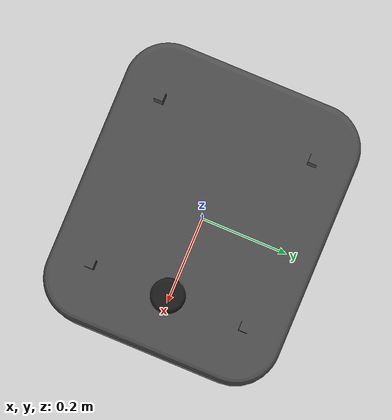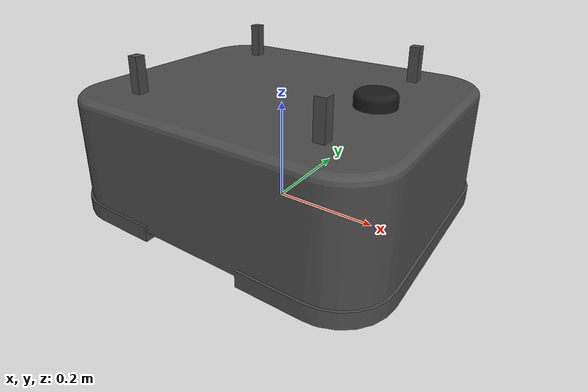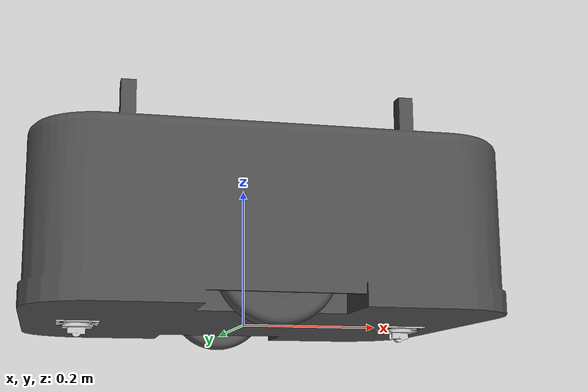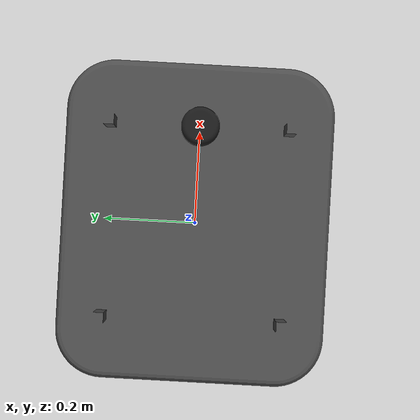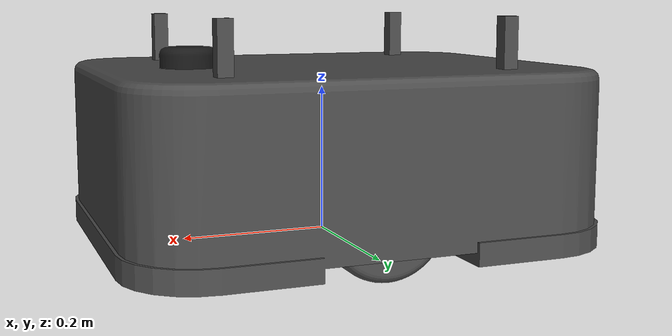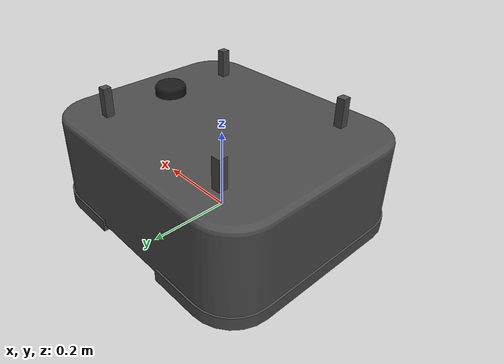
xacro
<?xml version="1.0"?>
<!-- Basic differential drive mobile base -->
<robot xmlns:xacro="http://www.ros.org/wiki/xacro" name="diffbot">
  <xacro:arg name="prefix" default="" />

  <!-- Import robot's main urdf file -->
  <xacro:include filename="$(find robot_control_pkg)/urdf/diffbot_description.urdf.xacro" />

  <!-- Import diffbot ros2_control description -->
  <xacro:include filename="$(find robot_control_pkg)/ros2_control/diffbot.ros2_control.xacro" />

  <xacro:diffbot prefix="$(arg prefix)" />

  <xacro:diffbot_ros2_control
    name="diffbot" prefix="$(arg prefix)" />

</robot>

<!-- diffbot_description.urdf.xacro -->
<robot xmlns:xacro="http://ros.org/wiki/xacro">

<xacro:macro name="diffbot" params="prefix">

<link name="base_link">

</link>

<link name="base_footprint_link">

</link>

<joint name="base_footprint_joint" type="fixed">
  <parent link="base_link"/>
  <child link="base_footprint_link"/>
  <origin xyz="0 0 0" rpy="0 0 0"/>
</joint>

<link
    name="chassis_link">
    <inertial>
      <origin
        xyz="0.0016049 7.4296E-14 0.058697"
        rpy="0 0 0" />
      <mass
        value="12" />
      <inertia
        ixx="0.37085"
        ixy="5.9421E-08"
        ixz="-0.0043358"
        iyy="0.56013"
        iyz="1.0073E-08"
        izz="0.86077" />
    </inertial>
    <visual>
      <origin
        xyz="0 0 0"
        rpy="0 0 0" />
      <geometry>
        <mesh
          filename="package://robot_control_pkg/description/models/base_link.STL" />
      </geometry>
      <material
        name="">
        <color
          rgba="0.29804 0.29804 0.29804 1" />
      </material>
    </visual>
    <collision>
      <origin
        xyz="0 0 0"
        rpy="0 0 0" />
      <geometry>
        <mesh
          filename="package://robot_control_pkg/description/models/base_link.STL" />
      </geometry>
    </collision>
  </link>

  <joint name="chassis_joint" type="fixed">
    <parent link="base_link"/>
    <child link="chassis_link"/>
    <origin xyz="0 0 0"/>
  </joint>

  <link
    name="right_wheel_link">
    <inertial>
      <origin
        xyz="1.3878E-17 0 -0.0033337"
        rpy="0 0 0" />
      <mass
        value="0.60765" />
      <inertia
        ixx="0.0012132"
        ixy="-1.1019E-20"
        ixz="5.4221E-19"
        iyy="0.0012132"
        iyz="-7.6446E-20"
        izz="0.0022643" />
    </inertial>
    <visual>
      <origin
        xyz="0 0 0"
        rpy="0 0 0" />
      <geometry>
        <mesh
          filename="package://robot_control_pkg/description/models/right_wheel_link.STL" />
      </geometry>
      <material
        name="">
        <color
          rgba="0.29804 0.29804 0.29804 1" />
      </material>
    </visual>
    <collision>
      <origin
        xyz="0 0 0"
        rpy="0 0 0" />
      <geometry>
        <mesh
          filename="package://robot_control_pkg/description/models/right_wheel_link.STL" />
      </geometry>
    </collision>
  </link>

  <joint
    name="right_wheel_joint"
    type="continuous">
    <origin
      xyz="0 -0.21525 0.059"
      rpy="1.5708 0 0" />
    <parent
      link="chassis_link" />
    <child
      link="right_wheel_link" />
    <axis
      xyz="0 0 -1" />
    <limit
      effort="10"
      velocity="10" />
    <dynamics
      damping="0.1"
      friction="0.1" />
  </joint>

  <link
    name="left_wheel_link">
    <inertial>
      <origin
        xyz="6.9389E-18 0 -0.0033337"
        rpy="0 0 0" />
      <mass
        value="0.60765" />
      <inertia
        ixx="0.0012132"
        ixy="2.0023E-20"
        ixz="1.2266E-19"
        iyy="0.0012132"
        iyz="1.6778E-19"
        izz="0.0022643" />
    </inertial>
    <visual>
      <origin
        xyz="0 0 0"
        rpy="0 0 0" />
      <geometry>
        <mesh
          filename="package://robot_control_pkg/description/models/left_wheel_link.STL" />
      </geometry>
      <material
        name="">
        <color
          rgba="0.29804 0.29804 0.29804 1" />
      </material>
    </visual>
    <collision>
      <origin
        xyz="0 0 0"
        rpy="0 0 0" />
      <geometry>
        <mesh
          filename="package://robot_control_pkg/description/models/left_wheel_link.STL" />
      </geometry>
    </collision>
  </link>

  <joint
    name="left_wheel_joint"
    type="continuous">
    <origin
      xyz="0 0.21525 0.059"
      rpy="-1.5708 0 0" />
    <parent
      link="chassis_link" />
    <child
      link="left_wheel_link" />
    <axis
      xyz="0 0 1" />
    <limit
      effort="10"
      velocity="10" />
    <dynamics
      damping="0.1"
      friction="0.1" />
  </joint>

  <link
    name="front_caster_link">
    <inertial>
      <origin
        xyz="-1.7347E-18 0.0030758 -0.00021456"
        rpy="0 0 0" />
      <mass
        value="0.05" />
      <inertia
        ixx="3.1756E-06"
        ixy="-4.0907E-23"
        ixz="-7.1759E-22"
        iyy="6.1712E-06"
        iyz="-5.9858E-09"
        izz="3.1557E-06" />
    </inertial>
    <visual>
      <origin
        xyz="0 0 0"
        rpy="0 0 0" />
      <geometry>
        <mesh
          filename="package://robot_control_pkg/description/models/front_caster_link.STL" />
      </geometry>
      <material
        name="">
        <color
          rgba="0.75294 0.75294 0.75294 1" />
      </material>
    </visual>
    <collision>
      <origin
        xyz="0 0 0"
        rpy="0 0 0" />
      <geometry>
        <mesh
          filename="package://robot_control_pkg/description/models/front_caster_link.STL" />
      </geometry>
    </collision>
  </link>

  <joint
    name="front_caster_joint"
    type="fixed">
    <origin
      xyz="0.24008 0 -0.0075"
      rpy="1.5708 0 1.5708" />
    <parent
      link="chassis_link" />
    <child
      link="front_caster_link" />
    <axis
      xyz="0 0 0" />
    <dynamics
      damping="0"
      friction="0.001" />
  </joint>

  <link
    name="rear_caster_link">
    <inertial>
      <origin
        xyz="-3.2526E-19 0.0030758 -0.00021456"
        rpy="0 0 0" />
      <mass
        value="0.05" />
      <inertia
        ixx="3.1756E-06"
        ixy="-5.5022E-23"
        ixz="-1.1135E-21"
        iyy="6.1712E-06"
        iyz="-5.9858E-09"
        izz="3.1557E-06" />
    </inertial>
    <visual>
      <origin
        xyz="0 0 0"
        rpy="0 0 0" />
      <geometry>
        <mesh
          filename="package://robot_control_pkg/description/models/rear_caster_link.STL" />
      </geometry>
      <material
        name="">
        <color
          rgba="0.75294 0.75294 0.75294 1" />
      </material>
    </visual>
    <collision>
      <origin
        xyz="0 0 0"
        rpy="0 0 0" />
      <geometry>
        <mesh
          filename="package://robot_control_pkg/description/models/rear_caster_link.STL" />
      </geometry>
    </collision>
  </link>

  <joint
    name="rear_caster_joint"
    type="fixed">
    <origin
      xyz="-0.23992 0 -0.0075"
      rpy="1.5708 0 1.5708" />
    <parent
      link="chassis_link" />
    <child
      link="rear_caster_link" />
    <axis
      xyz="0 0 0" />
    <dynamics
      damping="0"
      friction="0.001" />
  </joint>

  <link
    name="lidar_link">
    <inertial>
      <origin
        xyz="2.7756E-17 -1.0842E-19 0.0045392"
        rpy="0 0 0" />
      <mass
        value="0.25" />
      <inertia
        ixx="4.9112E-05"
        ixy="0"
        ixz="-1.2331E-21"
        iyy="4.9112E-05"
        iyz="-4.2562E-37"
        izz="8.3852E-05" />
    </inertial>
    <visual>
      <origin
        xyz="0 0 0"
        rpy="0 0 0" />
      <geometry>
        <mesh
          filename="package://robot_control_pkg/description/models/lidar_link.STL" />
      </geometry>
      <material
        name="">
        <color
          rgba="0.10196 0.10196 0.10196 1" />
      </material>
    </visual>
    <collision>
      <origin
        xyz="0 0 0"
        rpy="0 0 0" />
      <geometry>
        <mesh
          filename="package://robot_control_pkg/description/models/lidar_link.STL" />
      </geometry>
    </collision>
  </link>

  <joint
    name="lidar_joint"
    type="fixed">
    <origin
      xyz="0.19 0 0.24025"
      rpy="0 0 3.14159" />
    <parent
      link="chassis_link" />
    <child
      link="lidar_link" />
  </joint>

  </xacro:macro>
</robot>
